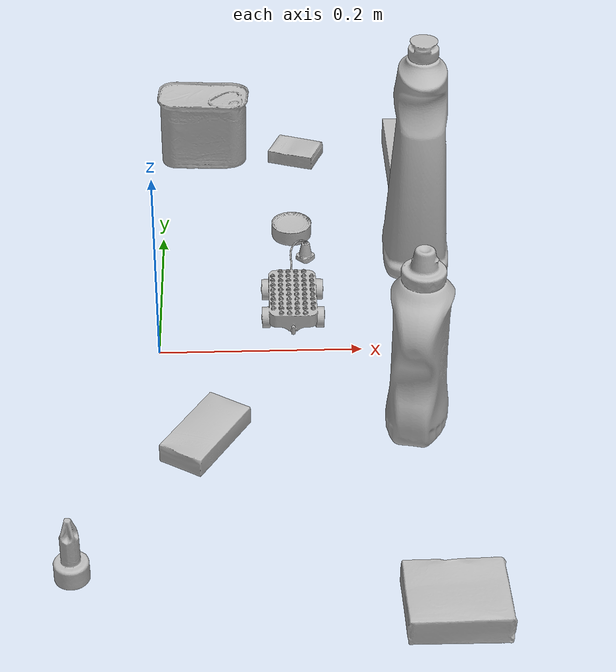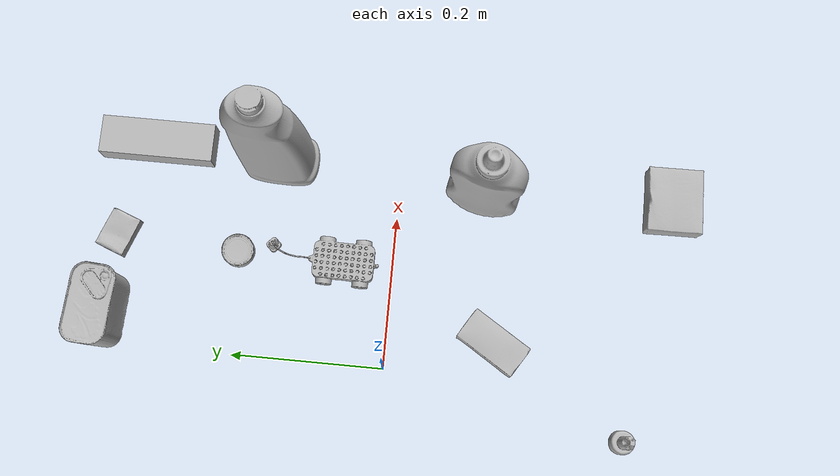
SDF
<sdf version="1.4">
  <world name="default">
    <light name="light1" type="point">
      <pose>0 0 1 0 0 0</pose>
      <diffuse>3 3 3 1</diffuse>
      <specular>3 3 3 1</specular>
    </light>
    <light name="light2" type="point">
      <pose>0 0.5 2 0 0 0</pose>
      <diffuse>1 1 1 1</diffuse>
      <specular>1 1 1 1</specular>
    </light>
    <light name="light3" type="point">
      <pose>0 0.5 2 0 0 0</pose>
      <diffuse>3 3 3 1</diffuse>
      <specular>3 3 3 1</specular>
    </light>
    <scene>
      <ambient>0.7 0.7 0.7</ambient>
    </scene>
    <model name="bottle1">
      <link name="link_bottle1">
        <collision name="default">
          <geometry>
            <mesh>
              <uri>model://bleach_cleanser/collision_meshes/collision.obj</uri>
              <scale>1.0 1.0 1.0</scale>
            </mesh>
          </geometry>
          <surface>
            <friction>
              <ode>
                <mu>0.5</mu>
                <mu2>0.5</mu2>
              </ode>
            </friction>
          <contact>
        <ode>
            <max_vel>0</max_vel>
            <min_depth>0.0001</min_depth>
            <kp>1e8</kp>
        </ode>
    </contact></surface>
        </collision>
        <visual name="default">
          <geometry>
            <mesh>
              <uri>model://bleach_cleanser/visual_meshes/visual.dae</uri>
              <scale>1.0 1.0 1.0</scale>
            </mesh>
          </geometry>
        </visual>
        <inertial>
          <mass>0.8435376882553101</mass>
          <pose>0.00012193185102660209 0.0037838835269212723 -0.02442161925137043 -0.0738167136291003 0.00042011570398771517 -0.0068750683244174</pose>
          <inertia>
            <ixx>0.0041056215</ixx>
            <iyy>0.0038258375</iyy>
            <izz>0.0007019545</izz>
            <ixy>0</ixy>
            <ixz>0</ixz>
            <iyz>0</iyz>
          </inertia>
        </inertial>
      </link>
      <pose>0.26600098609924316 0.1619027704000473 0.12578411400318146 -0.00019971891306306896 1.6834803332504184e-05 -0.0034916846773134012</pose>
    </model>
    <model name="bottle2">
      <link name="link_bottle2">
        <collision name="default">
          <geometry>
            <mesh>
              <uri>model://mustard_bottle/collision_meshes/collision.obj</uri>
              <scale>1.0 1.0 1.0</scale>
            </mesh>
          </geometry>
          <surface>
            <friction>
              <ode>
                <mu>0.5</mu>
                <mu2>0.5</mu2>
              </ode>
            </friction>
          <contact>
        <ode>
            <max_vel>0</max_vel>
            <min_depth>0.0001</min_depth>
            <kp>1e8</kp>
        </ode>
    </contact></surface>
        </collision>
        <visual name="default">
          <geometry>
            <mesh>
              <uri>model://mustard_bottle/visual_meshes/visual.dae</uri>
              <scale>1.0 1.0 1.0</scale>
            </mesh>
          </geometry>
        </visual>
        <inertial>
          <mass>0.5862947106361389</mass>
          <pose>0.0005032453336752951 -0.00015647400869056582 -0.01747579500079155 0.0004182326333961274 0.0009465780125852031 0.02485369627950655</pose>
          <inertia>
            <ixx>0.0016280604</ixx>
            <iyy>0.001428485</iyy>
            <izz>0.00042907606</izz>
            <ixy>0</ixy>
            <ixz>0</ixz>
            <iyz>0</iyz>
          </inertia>
        </inertial>
      </link>
      <pose>0.24324874579906464 -0.10915015637874603 0.09583087265491486 -0.01205032298314506 -0.004889709786672727 -0.234401465427326</pose>
    </model>
    <model name="toy1">
      <link name="link_toy1">
        <collision name="default">
          <geometry>
            <mesh>
              <uri>model://d_toy_airplane/collision_meshes/collision.obj</uri>
              <scale>1.0 1.0 1.0</scale>
            </mesh>
          </geometry>
          <surface>
            <friction>
              <ode>
                <mu>0.5</mu>
                <mu2>0.5</mu2>
              </ode>
            </friction>
          <contact>
        <ode>
            <max_vel>0</max_vel>
            <min_depth>0.0001</min_depth>
            <kp>1e8</kp>
        </ode>
    </contact></surface>
        </collision>
        <visual name="default">
          <geometry>
            <mesh>
              <uri>model://d_toy_airplane/visual_meshes/visual.dae</uri>
              <scale>1.0 1.0 1.0</scale>
            </mesh>
          </geometry>
        </visual>
        <inertial>
          <mass>0.016342557966709137</mass>
          <pose>9.410292841494083e-05 -5.809347931062803e-05 -0.011728093959391117 0.0002665850352305412 0.004678995185611379 0.5193821656772198</pose>
          <inertia>
            <ixx>4.8991824e-06</ixx>
            <iyy>4.9028777e-06</iyy>
            <izz>1.4790946e-06</izz>
            <ixy>0</ixy>
            <ixz>0</ixz>
            <iyz>0</iyz>
          </inertia>
        </inertial>
      </link>
      <pose>-0.06578737497329712 -0.31267228722572327 0.03333902359008789 -3.3146855025127615e-05 -7.365001165572454e-05 -1.7020141892832512</pose>
    </model>
    <model name="toy2">
      <link name="link_toy2">
        <collision name="default">
          <geometry>
            <mesh>
              <uri>model://g_lego_duplo/collision_meshes/collision.obj</uri>
              <scale>0.5 0.5 0.5</scale>
            </mesh>
          </geometry>
          <surface>
            <friction>
              <ode>
                <mu>0.5</mu>
                <mu2>0.5</mu2>
              </ode>
            </friction>
          <contact>
        <ode>
            <max_vel>0</max_vel>
            <min_depth>0.0001</min_depth>
            <kp>1e8</kp>
        </ode>
    </contact></surface>
        </collision>
        <visual name="default">
          <geometry>
            <mesh>
              <uri>model://g_lego_duplo/visual_meshes/visual.dae</uri>
              <scale>0.5 0.5 0.5</scale>
            </mesh>
          </geometry>
        </visual>
        <inertial>
          <mass>0.06075087562203407</mass>
          <pose>-0.02502383105456829 0.0008777320035733283 0.0019403373589739203 0.010962969944672394 0.038108282316868566 -0.09653022106038826</pose>
          <inertia>
            <ixx>2.2007183e-05</ixx>
            <iyy>6.65348e-05</iyy>
            <izz>8.323752e-05</izz>
            <ixy>0</ixy>
            <ixz>0</ixz>
            <iyz>0</iyz>
          </inertia>
        </inertial>
      </link>
      <pose>0.1360710859298706 0.0944284051656723 0.014981328509747982 0.0018032865783069584 -0.0043159467988016465 1.5550027114182483</pose>
    </model>
    <model name="can1">
      <link name="link_can1">
        <collision name="default">
          <geometry>
            <mesh>
              <uri>model://potted_meat_can/collision_meshes/collision.obj</uri>
              <scale>1.0 1.0 1.0</scale>
            </mesh>
          </geometry>
          <surface>
            <friction>
              <ode>
                <mu>0.5</mu>
                <mu2>0.5</mu2>
              </ode>
            </friction>
          <contact>
        <ode>
            <max_vel>0</max_vel>
            <min_depth>0.0001</min_depth>
            <kp>1e8</kp>
        </ode>
    </contact></surface>
        </collision>
        <visual name="default">
          <geometry>
            <mesh>
              <uri>model://potted_meat_can/visual_meshes/visual.dae</uri>
              <scale>1.0 1.0 1.0</scale>
            </mesh>
          </geometry>
        </visual>
        <inertial>
          <mass>0.20078136026859283</mass>
          <pose>0.00022888144303578883 -5.9891190176131204e-05 -0.0006367445457726717 -0.02809335636395505 -0.007232596981483405 0.015406261474000347</pose>
          <inertia>
            <ixx>0.0002582842</ixx>
            <iyy>0.00015692727</iyy>
            <izz>0.0001878526</izz>
            <ixy>0</ixy>
            <ixz>0</ixz>
            <iyz>0</iyz>
          </inertia>
        </inertial>
      </link>
      <pose>0.04279996454715729 0.368774950504303 0.04212799295783043 -3.095840895445434e-08 -4.4770442268208934e-07 1.4954402593136347</pose>
    </model>
    <model name="can2">
      <link name="link_can2">
        <collision name="default">
          <geometry>
            <mesh>
              <uri>model://tuna_fish_can/collision_meshes/collision.obj</uri>
              <scale>0.5 0.5 0.5</scale>
            </mesh>
          </geometry>
          <surface>
            <friction>
              <ode>
                <mu>0.5</mu>
                <mu2>0.5</mu2>
              </ode>
            </friction>
          <contact>
        <ode>
            <max_vel>0</max_vel>
            <min_depth>0.0001</min_depth>
            <kp>1e8</kp>
        </ode>
    </contact></surface>
        </collision>
        <visual name="default">
          <geometry>
            <mesh>
              <uri>model://tuna_fish_can/visual_meshes/visual.dae</uri>
              <scale>0.5 0.5 0.5</scale>
            </mesh>
          </geometry>
        </visual>
        <inertial>
          <mass>0.014736190438270569</mass>
          <pose>-2.036184559983667e-05 -7.256420758494642e-06 -0.0005269023822620511 -0.0017944748482382063 0.00017166274907885265 0.24056368509195397</pose>
          <inertia>
            <ixx>1.992355e-06</ixx>
            <iyy>1.9840513e-06</iyy>
            <izz>3.409204e-06</izz>
            <ixy>0</ixy>
            <ixz>0</ixz>
            <iyz>0</iyz>
          </inertia>
        </inertial>
      </link>
      <pose>0.13714507222175598 0.20457231998443604 0.008520000614225864 1.0027055513926034e-08 1.2178242063119066e-08 -1.1607782978316687</pose>
    </model>
    <model name="box1">
      <link name="link_box1">
        <collision name="default">
          <geometry>
            <mesh>
              <uri>model://sugar_box/collision_meshes/collision.obj</uri>
              <scale>0.5 0.5 0.5</scale>
            </mesh>
          </geometry>
          <surface>
            <friction>
              <ode>
                <mu>0.5</mu>
                <mu2>0.5</mu2>
              </ode>
            </friction>
          <contact>
        <ode>
            <max_vel>0</max_vel>
            <min_depth>0.0001</min_depth>
            <kp>1e8</kp>
        </ode>
    </contact></surface>
        </collision>
        <visual name="default">
          <geometry>
            <mesh>
              <uri>model://sugar_box/visual_meshes/visual.dae</uri>
              <scale>0.5 0.5 0.5</scale>
            </mesh>
          </geometry>
        </visual>
        <inertial>
          <mass>0.12222740799188614</mass>
          <pose>0.0005171863595023751 1.9245549992774613e-05 -0.00018182404164690524 -0.000404625834306888 0.0010506637544316808 0.0026153790219515644</pose>
          <inertia>
            <ixx>2.5459884e-05</ixx>
            <iyy>8.229157e-05</iyy>
            <izz>9.851283e-05</izz>
            <ixy>0</ixy>
            <ixz>0</ixz>
            <iyz>0</iyz>
          </inertia>
        </inertial>
      </link>
      <pose>0.046060945838689804 -0.13937439024448395 0.011399304494261742 0.000775381511729131 -0.023433265883588145 1.0045300859207453</pose>
    </model>
    <model name="box2">
      <link name="link_box2">
        <collision name="default">
          <geometry>
            <mesh>
              <uri>model://jenga/collision_meshes/collision.obj</uri>
              <scale>1.0 1.0 1.0</scale>
            </mesh>
          </geometry>
          <surface>
            <friction>
              <ode>
                <mu>0.5</mu>
                <mu2>0.5</mu2>
              </ode>
            </friction>
          <contact>
        <ode>
            <max_vel>0</max_vel>
            <min_depth>0.0001</min_depth>
            <kp>1e8</kp>
        </ode>
    </contact></surface>
        </collision>
        <visual name="default">
          <geometry>
            <mesh>
              <uri>model://jenga/visual_meshes/visual.dae</uri>
              <scale>1.0 1.0 1.0</scale>
            </mesh>
          </geometry>
        </visual>
        <inertial>
          <mass>0.17645145952701569</mass>
          <pose>-2.502855807051674e-07 -0.00010250011109746993 -4.0923405322246253e-05 0.0 -7.342155186052628e-07 0.0</pose>
          <inertia>
            <ixx>4.8828406e-05</ixx>
            <iyy>0.00033085994</iyy>
            <izz>0.00035322108</izz>
            <ixy>0</ixy>
            <ixz>0</ixz>
            <iyz>0</iyz>
          </inertia>
        </inertial>
      </link>
      <pose>0.27455514669418335 0.3261861205101013 0.015000000596046448 2.2951713024088496e-08 -5.099845485766292e-10 -1.5716055565272067</pose>
    </model>
    <model name="box3">
      <link name="link_box3">
        <collision name="default">
          <geometry>
            <mesh>
              <uri>model://gelatin_box/collision_meshes/collision.obj</uri>
              <scale>1.0 1.0 1.0</scale>
            </mesh>
          </geometry>
          <surface>
            <friction>
              <ode>
                <mu>0.5</mu>
                <mu2>0.5</mu2>
              </ode>
            </friction>
          <contact>
        <ode>
            <max_vel>0</max_vel>
            <min_depth>0.0001</min_depth>
            <kp>1e8</kp>
        </ode>
    </contact></surface>
        </collision>
        <visual name="default">
          <geometry>
            <mesh>
              <uri>model://gelatin_box/visual_meshes/visual.dae</uri>
              <scale>1.0 1.0 1.0</scale>
            </mesh>
          </geometry>
        </visual>
        <inertial>
          <mass>0.13059620559215546</mass>
          <pose>0.0004319618456065655 0.00011156871914863586 -0.0003640321083366871 -0.0010503721928909568 -0.00475581775899517 0.01644055574591333</pose>
          <inertia>
            <ixx>9.219027e-05</ixx>
            <iyy>6.585102e-05</iyy>
            <izz>0.00014033413</izz>
            <ixy>0</ixy>
            <ixz>0</ixz>
            <iyz>0</iyz>
          </inertia>
        </inertial>
      </link>
      <pose>0.2545478641986847 -0.3629533052444458 0.015168316662311554 0.005597397151727046 -0.007304498715307796 1.5747713880386802</pose>
    </model>
    <model name="box4">
      <link name="link_box4">
        <collision name="default">
          <geometry>
            <mesh>
              <uri>model://cracker_box/collision_meshes/collision.obj</uri>
              <scale>0.25 0.25 0.25</scale>
            </mesh>
          </geometry>
          <surface>
            <friction>
              <ode>
                <mu>0.5</mu>
                <mu2>0.5</mu2>
              </ode>
            </friction>
          <contact>
        <ode>
            <max_vel>0</max_vel>
            <min_depth>0.0001</min_depth>
            <kp>1e8</kp>
        </ode>
    </contact></surface>
        </collision>
        <visual name="default">
          <geometry>
            <mesh>
              <uri>model://cracker_box/visual_meshes/visual.dae</uri>
              <scale>0.25 0.25 0.25</scale>
            </mesh>
          </geometry>
        </visual>
        <inertial>
          <mass>0.04771818593144417</mass>
          <pose>0.0002366032567806542 6.358561950037256e-05 -0.00042573839891701937 -0.00031620769108308636 -0.011106489600173282 0.0025467959336867136</pose>
          <inertia>
            <ixx>7.5858593e-06</ixx>
            <iyy>1.2525745e-05</iyy>
            <izz>1.7875387e-05</izz>
            <ixy>0</ixy>
            <ixz>0</ixz>
            <iyz>0</iyz>
          </inertia>
        </inertial>
      </link>
      <pose>0.14734333753585815 0.36474665999412537 0.009120451286435127 -0.011788143042104269 -0.007367054165675884 -0.3779929550431011</pose>
    </model>
  <physics type="ode">
      <max_contacts>50</max_contacts>
      <ode>
        <solver>
          <type>quick</type>
          <iters>75</iters>
        </solver>
        <constraints>
          <contact_max_correcting_vel>0</contact_max_correcting_vel>
          <contact_surface_layer>0</contact_surface_layer>
        </constraints>
      </ode>
    </physics></world>
</sdf>
